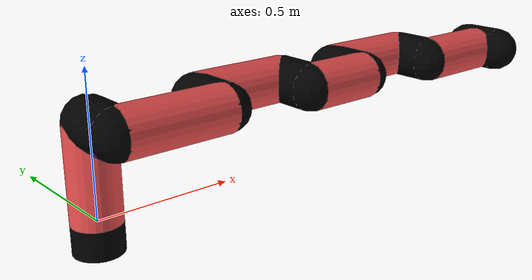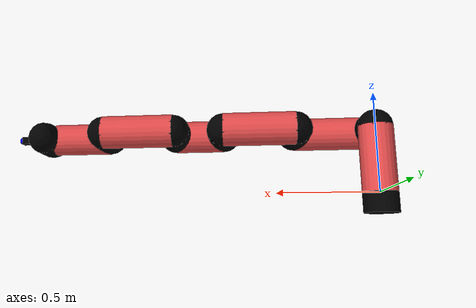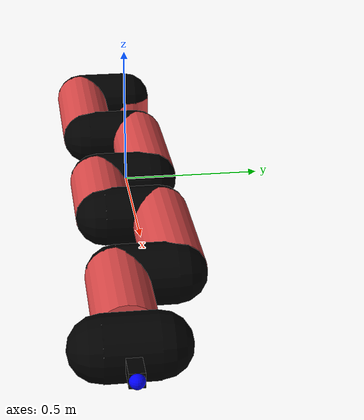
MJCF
<mujoco model="manipulator">
		<compiler angle="degree" coordinate="local" inertiafromgeom="auto" meshdir="meshes/"/>
		<option gravity="0 0 0" integrator="RK4" iterations="30" timestep="0.01"/>

		<default>
		<joint armature="1" limited="true" stiffness="10" damping="15" frictionloss="5.0"/>
		<geom conaffinity="1" condim="3" contype="1" friction=".5 .1 .1" margin="0.002"/>
		<motor ctrllimited="true"/>
		<position ctrllimited="true"/>
		</default>

		<asset>
		<texture builtin="gradient" height="100" rgb1="1.0 1.0 1.0" rgb2="1.0 1.0 1.0" type="skybox" width="100"/>
		<texture builtin="flat" height="32" name="arm_tex" rgb1="0.9 0.3 0.3" type="2d" width="32"/>
		<texture builtin="flat" height="32" name="gripper_tex" rgb1="0.0 0.0 0.0" type="cube" width="32"/>

		<material name="arm_mat" shininess="0.1" specular="0.1" texture="arm_tex"/>
		<material name="gripper_mat" shininess="1" specular="1" texture="gripper_tex"/>
		</asset>

		<worldbody>
		<light cutoff="45" diffuse=".8 .8 .8" dir="0 0.16 -1" directional="false" name="light" pos="0 -2.0 8.0" specular="0.3 0.3 0.3"/>

		<body name="base_link" pos="0 0 -0.1">
		<geom fromto="0 0 0 0 0 0.1" material="arm_mat" name="base_link" rgba="0.0 0.0 0.0 1" size="0.085" type="cylinder"/>
		</body>

		<body name="l1" pos="0 0 0">
<geom fromto="0 0 0 0 0 0.33" material="arm_mat" name="l1" rgba="0.9 0.3 0.3 1" size="0.085" type="cylinder"/>
<geom fromto="0 0 0.33 0 -0.16 0.33" material="arm_mat" name="l1_ex" rgba="0.0 0.0 0.0 1" size="0.085" type="capsule"/>
<joint axis="0 0 1" name="j1" pos="0 0 0" range="-90 90" damping="31.74" frictionloss="8.31"/>

<body name="l2" pos="0 -0.16 0.33">
<geom fromto="0 0 0 0.39 0 0" material="arm_mat" name="l2" rgba="0.9 0.3 0.3 1" size="0.085" type="cylinder"/>
<geom fromto="0.39 0 0 0.39 0.16 0" material="arm_mat" name="l2_ex" rgba="0.0 0.0 0.0 1" size="0.085" type="capsule"/>
<joint axis="0.0 1.0 0.0" name="j2" pos="0 0 0" range="-90 60" damping="32.41" frictionloss="8.83"/>

<body name="l3" pos="0.39 0.16 0">
<geom fromto="0 0 0 0.37 0 0" material="arm_mat" name="l3" rgba="0.9 0.3 0.3 1" size="0.085" type="cylinder"/>
<geom fromto="0.37 0 0 0.37 -0.16 0" material="arm_mat" name="l3_ex" rgba="0.0 0.0 0.0 1" size="0.085" type="capsule"/>
<joint axis="0.0 1.0 0.0" name="j3" pos="0 0 0" range="-30 60" damping="33.09" frictionloss="10.29"/>

<body name="l4" pos="0.37 -0.16 0">
<geom fromto="0 0 0 0.26 0 0" material="arm_mat" name="l4" rgba="0.9 0.3 0.3 1" size="0.085" type="cylinder"/>
<geom fromto="0.26 0 0 0.26 0.16 0" material="arm_mat" name="l4_ex" rgba="0.0 0.0 0.0 1" size="0.085" type="capsule"/>
<joint axis="0.0 1.0 0.0" name="j4" pos="0 0 0" range="-30 60" damping="29.53" frictionloss="7.77"/>

<body name="l5" pos="0.26 0.16 0">
<geom fromto="0 0 0 0.37 0 0" material="arm_mat" name="l5" rgba="0.9 0.3 0.3 1" size="0.085" type="cylinder"/>
<geom fromto="0.37 0 0 0.37 -0.16 0" material="arm_mat" name="l5_ex" rgba="0.0 0.0 0.0 1" size="0.085" type="capsule"/>
<joint axis="0.0 1.0 0.0" name="j5" pos="0 0 0" range="-30 60" damping="30.05" frictionloss="11.22"/>

<body name="l6" pos="0.37 -0.16 0">
<geom fromto="0 0 0 0.31 0 0" material="arm_mat" name="l6" rgba="0.9 0.3 0.3 1" size="0.085" type="cylinder"/>
<joint axis="0.0 1.0 0.0" name="j6" pos="0 0 0" range="-30 60" damping="24.45" frictionloss="12.45"/>

<body name="gripper" pos="0.31 0 0">
<geom fromto="0.05 -0.07 0 0.05 0.07 0" material="gripper_mat" name="gripper" rgba="0.0 0.0 0.0 1" size="0.085" type="capsule"/><joint axis="1 0 0" name="j7" pos="0 0 0" range="-90 90" damping="15" frictionloss="5.0"/><body name="finger" pos="0.1 0 0">
<geom fromto="0 0.0 0 0.1 0.0 0" material="gripper_mat" name="finger" rgba="0.0 0.0 0.0 1" size="0.020 0.06 0.06" type="box"/>
</body>
<site name="current" pos="0.2 0. 0.0" rgba="0. 0. 1.0 1" size="0.02" type="sphere"/>
</body>
</body>
</body>
</body>
</body>
</body>
</body>
</worldbody>
<actuator>
<motor ctrllimited="true" ctrlrange="-1.0 1.0" joint="j1" gear="83.2"/>
<motor ctrllimited="true" ctrlrange="-1.0 1.0" joint="j2" gear="83.58"/>
<motor ctrllimited="true" ctrlrange="-1.0 1.0" joint="j3" gear="82.79"/>
<motor ctrllimited="true" ctrlrange="-1.0 1.0" joint="j4" gear="79.71"/>
<motor ctrllimited="true" ctrlrange="-1.0 1.0" joint="j5" gear="96.11"/>
<motor ctrllimited="true" ctrlrange="-1.0 1.0" joint="j6" gear="80.36"/>
<motor ctrllimited="true" ctrlrange="-1.0 1.0" joint="j7" gear="80"/>
</actuator>
</mujoco>
